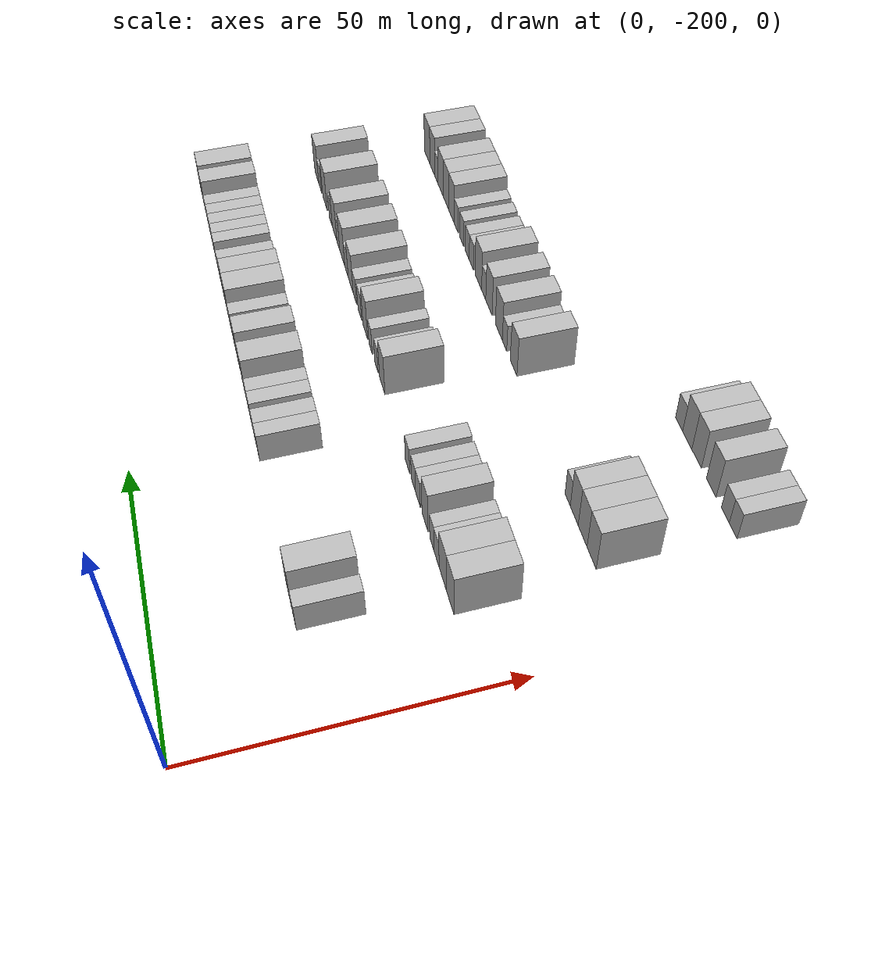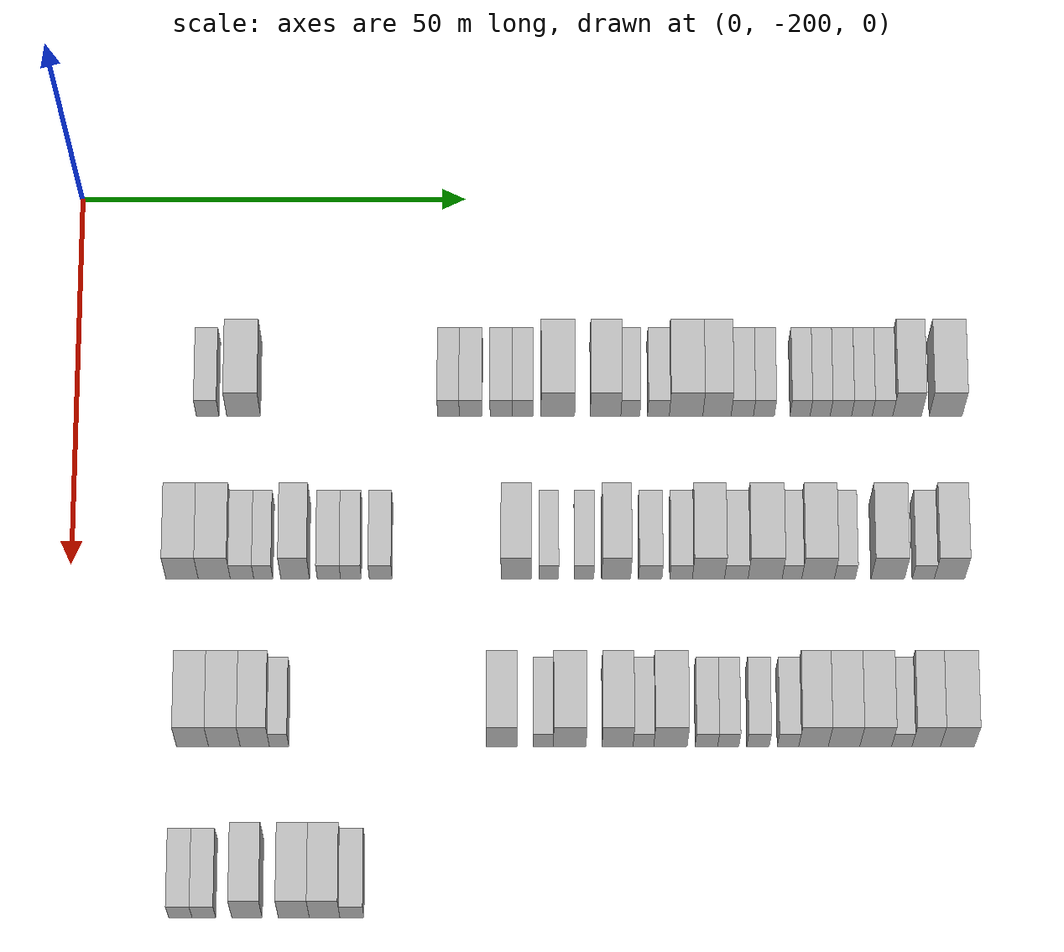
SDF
<sdf version="1.6">
 <world name="default">
  <model name="building_42">
   <static>1</static>
   <pose>25.0000 -183.0272 0 0.000000 0.000000 0.000000</pose>
   <link name="link">
    <pose>0 0 3.00 0 0 0</pose>
    <collision name="collision"><geometry><box><size>10.0000 2.9130 6.0000</size></box></geometry></collision>
    <visual name="visual">
     <cast_shadows>0</cast_shadows>
     <geometry><box><size>10.0000 2.9130 6.0000</size></box></geometry>
     <material>
      <script>
       <uri>model://HANNAS_wall/materials/scripts</uri>
       <uri>model://HANNAS_wall/materials/textures</uri>
       <name>vrc/HANNAS_wall</name>
      </script>
     </material>
    </visual>
   </link>
  </model>
  <model name="building_43">
   <static>1</static>
   <pose>25.0000 -178.3975 0 0.000000 0.000000 0.000000</pose>
   <link name="link">
    <pose>0 0 4.50 0 0 0</pose>
    <collision name="collision"><geometry><box><size>10.0000 4.3465 9.0000</size></box></geometry></collision>
    <visual name="visual">
     <cast_shadows>0</cast_shadows>
     <geometry><box><size>10.0000 4.3465 9.0000</size></box></geometry>
     <material>
      <script>
       <uri>model://HANNAS_wall/materials/scripts</uri>
       <uri>model://HANNAS_wall/materials/textures</uri>
       <name>vrc/HANNAS_wall</name>
      </script>
     </material>
    </visual>
   </link>
  </model>
  <model name="building_44">
   <static>1</static>
   <pose>25.0000 -152.0450 0 0.000000 0.000000 0.000000</pose>
   <link name="link">
    <pose>0 0 3.00 0 0 0</pose>
    <collision name="collision"><geometry><box><size>10.0000 2.7862 6.0000</size></box></geometry></collision>
    <visual name="visual">
     <cast_shadows>0</cast_shadows>
     <geometry><box><size>10.0000 2.7862 6.0000</size></box></geometry>
     <material>
      <script>
       <uri>model://HANNAS_wall/materials/scripts</uri>
       <uri>model://HANNAS_wall/materials/textures</uri>
       <name>vrc/HANNAS_wall</name>
      </script>
     </material>
    </visual>
   </link>
  </model>
  <model name="building_45">
   <static>1</static>
   <pose>25.0000 -149.1709 0 0.000000 0.000000 0.000000</pose>
   <link name="link">
    <pose>0 0 3.00 0 0 0</pose>
    <collision name="collision"><geometry><box><size>10.0000 2.9621 6.0000</size></box></geometry></collision>
    <visual name="visual">
     <cast_shadows>0</cast_shadows>
     <geometry><box><size>10.0000 2.9621 6.0000</size></box></geometry>
     <material>
      <script>
       <uri>model://HANNAS_wall/materials/scripts</uri>
       <uri>model://HANNAS_wall/materials/textures</uri>
       <name>vrc/HANNAS_wall</name>
      </script>
     </material>
    </visual>
   </link>
  </model>
  <model name="building_46">
   <static>1</static>
   <pose>25.0000 -145.2826 0 0.000000 0.000000 0.000000</pose>
   <link name="link">
    <pose>0 0 3.00 0 0 0</pose>
    <collision name="collision"><geometry><box><size>10.0000 2.8144 6.0000</size></box></geometry></collision>
    <visual name="visual">
     <cast_shadows>0</cast_shadows>
     <geometry><box><size>10.0000 2.8144 6.0000</size></box></geometry>
     <material>
      <script>
       <uri>model://HANNAS_wall/materials/scripts</uri>
       <uri>model://HANNAS_wall/materials/textures</uri>
       <name>vrc/HANNAS_wall</name>
      </script>
     </material>
    </visual>
   </link>
  </model>
  <model name="building_47">
   <static>1</static>
   <pose>25.0000 -142.5109 0 0.000000 0.000000 0.000000</pose>
   <link name="link">
    <pose>0 0 3.00 0 0 0</pose>
    <collision name="collision"><geometry><box><size>10.0000 2.7291 6.0000</size></box></geometry></collision>
    <visual name="visual">
     <cast_shadows>0</cast_shadows>
     <geometry><box><size>10.0000 2.7291 6.0000</size></box></geometry>
     <material>
      <script>
       <uri>model://HANNAS_wall/materials/scripts</uri>
       <uri>model://HANNAS_wall/materials/textures</uri>
       <name>vrc/HANNAS_wall</name>
      </script>
     </material>
    </visual>
   </link>
  </model>
  <model name="building_48">
   <static>1</static>
   <pose>25.0000 -137.9793 0 0.000000 0.000000 0.000000</pose>
   <link name="link">
    <pose>0 0 4.50 0 0 0</pose>
    <collision name="collision"><geometry><box><size>10.0000 4.3340 9.0000</size></box></geometry></collision>
    <visual name="visual">
     <cast_shadows>0</cast_shadows>
     <geometry><box><size>10.0000 4.3340 9.0000</size></box></geometry>
     <material>
      <script>
       <uri>model://HANNAS_wall/materials/scripts</uri>
       <uri>model://HANNAS_wall/materials/textures</uri>
       <name>vrc/HANNAS_wall</name>
      </script>
     </material>
    </visual>
   </link>
  </model>
  <model name="building_49">
   <static>1</static>
   <pose>25.0000 -131.8416 0 0.000000 0.000000 0.000000</pose>
   <link name="link">
    <pose>0 0 4.50 0 0 0</pose>
    <collision name="collision"><geometry><box><size>10.0000 3.9414 9.0000</size></box></geometry></collision>
    <visual name="visual">
     <cast_shadows>0</cast_shadows>
     <geometry><box><size>10.0000 3.9414 9.0000</size></box></geometry>
     <material>
      <script>
       <uri>model://HANNAS_wall/materials/scripts</uri>
       <uri>model://HANNAS_wall/materials/textures</uri>
       <name>vrc/HANNAS_wall</name>
      </script>
     </material>
    </visual>
   </link>
  </model>
  <model name="building_50">
   <static>1</static>
   <pose>25.0000 -128.6530 0 0.000000 0.000000 0.000000</pose>
   <link name="link">
    <pose>0 0 3.00 0 0 0</pose>
    <collision name="collision"><geometry><box><size>10.0000 2.4358 6.0000</size></box></geometry></collision>
    <visual name="visual">
     <cast_shadows>0</cast_shadows>
     <geometry><box><size>10.0000 2.4358 6.0000</size></box></geometry>
     <material>
      <script>
       <uri>model://HANNAS_wall/materials/scripts</uri>
       <uri>model://HANNAS_wall/materials/textures</uri>
       <name>vrc/HANNAS_wall</name>
      </script>
     </material>
    </visual>
   </link>
  </model>
  <model name="building_51">
   <static>1</static>
   <pose>25.0000 -125.0376 0 0.000000 0.000000 0.000000</pose>
   <link name="link">
    <pose>0 0 3.00 0 0 0</pose>
    <collision name="collision"><geometry><box><size>10.0000 2.7949 6.0000</size></box></geometry></collision>
    <visual name="visual">
     <cast_shadows>0</cast_shadows>
     <geometry><box><size>10.0000 2.7949 6.0000</size></box></geometry>
     <material>
      <script>
       <uri>model://HANNAS_wall/materials/scripts</uri>
       <uri>model://HANNAS_wall/materials/textures</uri>
       <name>vrc/HANNAS_wall</name>
      </script>
     </material>
    </visual>
   </link>
  </model>
  <model name="building_52">
   <static>1</static>
   <pose>25.0000 -121.4826 0 0.000000 0.000000 0.000000</pose>
   <link name="link">
    <pose>0 0 4.50 0 0 0</pose>
    <collision name="collision"><geometry><box><size>10.0000 4.3151 9.0000</size></box></geometry></collision>
    <visual name="visual">
     <cast_shadows>0</cast_shadows>
     <geometry><box><size>10.0000 4.3151 9.0000</size></box></geometry>
     <material>
      <script>
       <uri>model://HANNAS_wall/materials/scripts</uri>
       <uri>model://HANNAS_wall/materials/textures</uri>
       <name>vrc/HANNAS_wall</name>
      </script>
     </material>
    </visual>
   </link>
  </model>
  <model name="building_53">
   <static>1</static>
   <pose>25.0000 -117.5054 0 0.000000 0.000000 0.000000</pose>
   <link name="link">
    <pose>0 0 4.50 0 0 0</pose>
    <collision name="collision"><geometry><box><size>10.0000 3.6393 9.0000</size></box></geometry></collision>
    <visual name="visual">
     <cast_shadows>0</cast_shadows>
     <geometry><box><size>10.0000 3.6393 9.0000</size></box></geometry>
     <material>
      <script>
       <uri>model://HANNAS_wall/materials/scripts</uri>
       <uri>model://HANNAS_wall/materials/textures</uri>
       <name>vrc/HANNAS_wall</name>
      </script>
     </material>
    </visual>
   </link>
  </model>
  <model name="building_54">
   <static>1</static>
   <pose>25.0000 -114.2468 0 0.000000 0.000000 0.000000</pose>
   <link name="link">
    <pose>0 0 3.00 0 0 0</pose>
    <collision name="collision"><geometry><box><size>10.0000 2.8781 6.0000</size></box></geometry></collision>
    <visual name="visual">
     <cast_shadows>0</cast_shadows>
     <geometry><box><size>10.0000 2.8781 6.0000</size></box></geometry>
     <material>
      <script>
       <uri>model://HANNAS_wall/materials/scripts</uri>
       <uri>model://HANNAS_wall/materials/textures</uri>
       <name>vrc/HANNAS_wall</name>
      </script>
     </material>
    </visual>
   </link>
  </model>
  <model name="building_55">
   <static>1</static>
   <pose>25.0000 -111.4624 0 0.000000 0.000000 0.000000</pose>
   <link name="link">
    <pose>0 0 3.00 0 0 0</pose>
    <collision name="collision"><geometry><box><size>10.0000 2.6906 6.0000</size></box></geometry></collision>
    <visual name="visual">
     <cast_shadows>0</cast_shadows>
     <geometry><box><size>10.0000 2.6906 6.0000</size></box></geometry>
     <material>
      <script>
       <uri>model://HANNAS_wall/materials/scripts</uri>
       <uri>model://HANNAS_wall/materials/textures</uri>
       <name>vrc/HANNAS_wall</name>
      </script>
     </material>
    </visual>
   </link>
  </model>
  <model name="building_56">
   <static>1</static>
   <pose>25.0000 -106.8218 0 0.000000 0.000000 0.000000</pose>
   <link name="link">
    <pose>0 0 3.00 0 0 0</pose>
    <collision name="collision"><geometry><box><size>10.0000 2.5906 6.0000</size></box></geometry></collision>
    <visual name="visual">
     <cast_shadows>0</cast_shadows>
     <geometry><box><size>10.0000 2.5906 6.0000</size></box></geometry>
     <material>
      <script>
       <uri>model://HANNAS_wall/materials/scripts</uri>
       <uri>model://HANNAS_wall/materials/textures</uri>
       <name>vrc/HANNAS_wall</name>
      </script>
     </material>
    </visual>
   </link>
  </model>
  <model name="building_57">
   <static>1</static>
   <pose>25.0000 -104.2298 0 0.000000 0.000000 0.000000</pose>
   <link name="link">
    <pose>0 0 3.00 0 0 0</pose>
    <collision name="collision"><geometry><box><size>10.0000 2.5936 6.0000</size></box></geometry></collision>
    <visual name="visual">
     <cast_shadows>0</cast_shadows>
     <geometry><box><size>10.0000 2.5936 6.0000</size></box></geometry>
     <material>
      <script>
       <uri>model://HANNAS_wall/materials/scripts</uri>
       <uri>model://HANNAS_wall/materials/textures</uri>
       <name>vrc/HANNAS_wall</name>
      </script>
     </material>
    </visual>
   </link>
  </model>
  <model name="building_58">
   <static>1</static>
   <pose>25.0000 -101.5624 0 0.000000 0.000000 0.000000</pose>
   <link name="link">
    <pose>0 0 3.00 0 0 0</pose>
    <collision name="collision"><geometry><box><size>10.0000 2.7412 6.0000</size></box></geometry></collision>
    <visual name="visual">
     <cast_shadows>0</cast_shadows>
     <geometry><box><size>10.0000 2.7412 6.0000</size></box></geometry>
     <material>
      <script>
       <uri>model://HANNAS_wall/materials/scripts</uri>
       <uri>model://HANNAS_wall/materials/textures</uri>
       <name>vrc/HANNAS_wall</name>
      </script>
     </material>
    </visual>
   </link>
  </model>
  <model name="building_59">
   <static>1</static>
   <pose>25.0000 -98.8627 0 0.000000 0.000000 0.000000</pose>
   <link name="link">
    <pose>0 0 3.00 0 0 0</pose>
    <collision name="collision"><geometry><box><size>10.0000 2.6580 6.0000</size></box></geometry></collision>
    <visual name="visual">
     <cast_shadows>0</cast_shadows>
     <geometry><box><size>10.0000 2.6580 6.0000</size></box></geometry>
     <material>
      <script>
       <uri>model://HANNAS_wall/materials/scripts</uri>
       <uri>model://HANNAS_wall/materials/textures</uri>
       <name>vrc/HANNAS_wall</name>
      </script>
     </material>
    </visual>
   </link>
  </model>
  <model name="building_60">
   <static>1</static>
   <pose>25.0000 -96.2088 0 0.000000 0.000000 0.000000</pose>
   <link name="link">
    <pose>0 0 3.00 0 0 0</pose>
    <collision name="collision"><geometry><box><size>10.0000 2.6499 6.0000</size></box></geometry></collision>
    <visual name="visual">
     <cast_shadows>0</cast_shadows>
     <geometry><box><size>10.0000 2.6499 6.0000</size></box></geometry>
     <material>
      <script>
       <uri>model://HANNAS_wall/materials/scripts</uri>
       <uri>model://HANNAS_wall/materials/textures</uri>
       <name>vrc/HANNAS_wall</name>
      </script>
     </material>
    </visual>
   </link>
  </model>
  <model name="building_61">
   <static>1</static>
   <pose>25.0000 -93.0442 0 0.000000 0.000000 0.000000</pose>
   <link name="link">
    <pose>0 0 4.50 0 0 0</pose>
    <collision name="collision"><geometry><box><size>10.0000 3.6793 9.0000</size></box></geometry></collision>
    <visual name="visual">
     <cast_shadows>0</cast_shadows>
     <geometry><box><size>10.0000 3.6793 9.0000</size></box></geometry>
     <material>
      <script>
       <uri>model://HANNAS_wall/materials/scripts</uri>
       <uri>model://HANNAS_wall/materials/textures</uri>
       <name>vrc/HANNAS_wall</name>
      </script>
     </material>
    </visual>
   </link>
  </model>
  <model name="building_62">
   <static>1</static>
   <pose>25.0000 -88.0817 0 0.000000 0.000000 0.000000</pose>
   <link name="link">
    <pose>0 0 4.50 0 0 0</pose>
    <collision name="collision"><geometry><box><size>10.0000 4.2457 9.0000</size></box></geometry></collision>
    <visual name="visual">
     <cast_shadows>0</cast_shadows>
     <geometry><box><size>10.0000 4.2457 9.0000</size></box></geometry>
     <material>
      <script>
       <uri>model://HANNAS_wall/materials/scripts</uri>
       <uri>model://HANNAS_wall/materials/textures</uri>
       <name>vrc/HANNAS_wall</name>
      </script>
     </material>
    </visual>
   </link>
  </model>
  <model name="building_232">
   <static>1</static>
   <pose>47.0000 -185.7926 0 0.000000 0.000000 0.000000</pose>
   <link name="link">
    <pose>0 0 4.50 0 0 0</pose>
    <collision name="collision"><geometry><box><size>10.0000 4.1049 9.0000</size></box></geometry></collision>
    <visual name="visual">
     <cast_shadows>0</cast_shadows>
     <geometry><box><size>10.0000 4.1049 9.0000</size></box></geometry>
     <material>
      <script>
       <uri>model://HANNAS_wall/materials/scripts</uri>
       <uri>model://HANNAS_wall/materials/textures</uri>
       <name>vrc/HANNAS_wall</name>
      </script>
     </material>
    </visual>
   </link>
  </model>
  <model name="building_233">
   <static>1</static>
   <pose>47.0000 -181.7011 0 0.000000 0.000000 0.000000</pose>
   <link name="link">
    <pose>0 0 4.50 0 0 0</pose>
    <collision name="collision"><geometry><box><size>10.0000 4.0781 9.0000</size></box></geometry></collision>
    <visual name="visual">
     <cast_shadows>0</cast_shadows>
     <geometry><box><size>10.0000 4.0781 9.0000</size></box></geometry>
     <material>
      <script>
       <uri>model://HANNAS_wall/materials/scripts</uri>
       <uri>model://HANNAS_wall/materials/textures</uri>
       <name>vrc/HANNAS_wall</name>
      </script>
     </material>
    </visual>
   </link>
  </model>
  <model name="building_234">
   <static>1</static>
   <pose>47.0000 -178.1701 0 0.000000 0.000000 0.000000</pose>
   <link name="link">
    <pose>0 0 3.00 0 0 0</pose>
    <collision name="collision"><geometry><box><size>10.0000 2.9839 6.0000</size></box></geometry></collision>
    <visual name="visual">
     <cast_shadows>0</cast_shadows>
     <geometry><box><size>10.0000 2.9839 6.0000</size></box></geometry>
     <material>
      <script>
       <uri>model://HANNAS_wall/materials/scripts</uri>
       <uri>model://HANNAS_wall/materials/textures</uri>
       <name>vrc/HANNAS_wall</name>
      </script>
     </material>
    </visual>
   </link>
  </model>
  <model name="building_235">
   <static>1</static>
   <pose>47.0000 -175.4591 0 0.000000 0.000000 0.000000</pose>
   <link name="link">
    <pose>0 0 3.00 0 0 0</pose>
    <collision name="collision"><geometry><box><size>10.0000 2.4380 6.0000</size></box></geometry></collision>
    <visual name="visual">
     <cast_shadows>0</cast_shadows>
     <geometry><box><size>10.0000 2.4380 6.0000</size></box></geometry>
     <material>
      <script>
       <uri>model://HANNAS_wall/materials/scripts</uri>
       <uri>model://HANNAS_wall/materials/textures</uri>
       <name>vrc/HANNAS_wall</name>
      </script>
     </material>
    </visual>
   </link>
  </model>
  <model name="building_236">
   <static>1</static>
   <pose>47.0000 -171.4215 0 0.000000 0.000000 0.000000</pose>
   <link name="link">
    <pose>0 0 4.50 0 0 0</pose>
    <collision name="collision"><geometry><box><size>10.0000 3.6372 9.0000</size></box></geometry></collision>
    <visual name="visual">
     <cast_shadows>0</cast_shadows>
     <geometry><box><size>10.0000 3.6372 9.0000</size></box></geometry>
     <material>
      <script>
       <uri>model://HANNAS_wall/materials/scripts</uri>
       <uri>model://HANNAS_wall/materials/textures</uri>
       <name>vrc/HANNAS_wall</name>
      </script>
     </material>
    </visual>
   </link>
  </model>
  <model name="building_237">
   <static>1</static>
   <pose>47.0000 -167.1223 0 0.000000 0.000000 0.000000</pose>
   <link name="link">
    <pose>0 0 3.00 0 0 0</pose>
    <collision name="collision"><geometry><box><size>10.0000 2.9612 6.0000</size></box></geometry></collision>
    <visual name="visual">
     <cast_shadows>0</cast_shadows>
     <geometry><box><size>10.0000 2.9612 6.0000</size></box></geometry>
     <material>
      <script>
       <uri>model://HANNAS_wall/materials/scripts</uri>
       <uri>model://HANNAS_wall/materials/textures</uri>
       <name>vrc/HANNAS_wall</name>
      </script>
     </material>
    </visual>
   </link>
  </model>
  <model name="building_238">
   <static>1</static>
   <pose>47.0000 -164.3215 0 0.000000 0.000000 0.000000</pose>
   <link name="link">
    <pose>0 0 3.00 0 0 0</pose>
    <collision name="collision"><geometry><box><size>10.0000 2.6404 6.0000</size></box></geometry></collision>
    <visual name="visual">
     <cast_shadows>0</cast_shadows>
     <geometry><box><size>10.0000 2.6404 6.0000</size></box></geometry>
     <material>
      <script>
       <uri>model://HANNAS_wall/materials/scripts</uri>
       <uri>model://HANNAS_wall/materials/textures</uri>
       <name>vrc/HANNAS_wall</name>
      </script>
     </material>
    </visual>
   </link>
  </model>
  <model name="building_239">
   <static>1</static>
   <pose>47.0000 -160.5517 0 0.000000 0.000000 0.000000</pose>
   <link name="link">
    <pose>0 0 3.00 0 0 0</pose>
    <collision name="collision"><geometry><box><size>10.0000 2.8992 6.0000</size></box></geometry></collision>
    <visual name="visual">
     <cast_shadows>0</cast_shadows>
     <geometry><box><size>10.0000 2.8992 6.0000</size></box></geometry>
     <material>
      <script>
       <uri>model://HANNAS_wall/materials/scripts</uri>
       <uri>model://HANNAS_wall/materials/textures</uri>
       <name>vrc/HANNAS_wall</name>
      </script>
     </material>
    </visual>
   </link>
  </model>
  <model name="building_240">
   <static>1</static>
   <pose>47.0000 -143.3220 0 0.000000 0.000000 0.000000</pose>
   <link name="link">
    <pose>0 0 4.50 0 0 0</pose>
    <collision name="collision"><geometry><box><size>10.0000 3.8534 9.0000</size></box></geometry></collision>
    <visual name="visual">
     <cast_shadows>0</cast_shadows>
     <geometry><box><size>10.0000 3.8534 9.0000</size></box></geometry>
     <material>
      <script>
       <uri>model://HANNAS_wall/materials/scripts</uri>
       <uri>model://HANNAS_wall/materials/textures</uri>
       <name>vrc/HANNAS_wall</name>
      </script>
     </material>
    </visual>
   </link>
  </model>
  <model name="building_241">
   <static>1</static>
   <pose>47.0000 -139.1752 0 0.000000 0.000000 0.000000</pose>
   <link name="link">
    <pose>0 0 3.00 0 0 0</pose>
    <collision name="collision"><geometry><box><size>10.0000 2.4403 6.0000</size></box></geometry></collision>
    <visual name="visual">
     <cast_shadows>0</cast_shadows>
     <geometry><box><size>10.0000 2.4403 6.0000</size></box></geometry>
     <material>
      <script>
       <uri>model://HANNAS_wall/materials/scripts</uri>
       <uri>model://HANNAS_wall/materials/textures</uri>
       <name>vrc/HANNAS_wall</name>
      </script>
     </material>
    </visual>
   </link>
  </model>
  <model name="building_242">
   <static>1</static>
   <pose>47.0000 -134.7123 0 0.000000 0.000000 0.000000</pose>
   <link name="link">
    <pose>0 0 3.00 0 0 0</pose>
    <collision name="collision"><geometry><box><size>10.0000 2.4854 6.0000</size></box></geometry></collision>
    <visual name="visual">
     <cast_shadows>0</cast_shadows>
     <geometry><box><size>10.0000 2.4854 6.0000</size></box></geometry>
     <material>
      <script>
       <uri>model://HANNAS_wall/materials/scripts</uri>
       <uri>model://HANNAS_wall/materials/textures</uri>
       <name>vrc/HANNAS_wall</name>
      </script>
     </material>
    </visual>
   </link>
  </model>
  <model name="building_243">
   <static>1</static>
   <pose>47.0000 -130.6292 0 0.000000 0.000000 0.000000</pose>
   <link name="link">
    <pose>0 0 4.50 0 0 0</pose>
    <collision name="collision"><geometry><box><size>10.0000 3.6810 9.0000</size></box></geometry></collision>
    <visual name="visual">
     <cast_shadows>0</cast_shadows>
     <geometry><box><size>10.0000 3.6810 9.0000</size></box></geometry>
     <material>
      <script>
       <uri>model://HANNAS_wall/materials/scripts</uri>
       <uri>model://HANNAS_wall/materials/textures</uri>
       <name>vrc/HANNAS_wall</name>
      </script>
     </material>
    </visual>
   </link>
  </model>
  <model name="building_244">
   <static>1</static>
   <pose>47.0000 -126.3032 0 0.000000 0.000000 0.000000</pose>
   <link name="link">
    <pose>0 0 3.00 0 0 0</pose>
    <collision name="collision"><geometry><box><size>10.0000 2.9710 6.0000</size></box></geometry></collision>
    <visual name="visual">
     <cast_shadows>0</cast_shadows>
     <geometry><box><size>10.0000 2.9710 6.0000</size></box></geometry>
     <material>
      <script>
       <uri>model://HANNAS_wall/materials/scripts</uri>
       <uri>model://HANNAS_wall/materials/textures</uri>
       <name>vrc/HANNAS_wall</name>
      </script>
     </material>
    </visual>
   </link>
  </model>
  <model name="building_245">
   <static>1</static>
   <pose>47.0000 -122.3835 0 0.000000 0.000000 0.000000</pose>
   <link name="link">
    <pose>0 0 3.00 0 0 0</pose>
    <collision name="collision"><geometry><box><size>10.0000 2.8685 6.0000</size></box></geometry></collision>
    <visual name="visual">
     <cast_shadows>0</cast_shadows>
     <geometry><box><size>10.0000 2.8685 6.0000</size></box></geometry>
     <material>
      <script>
       <uri>model://HANNAS_wall/materials/scripts</uri>
       <uri>model://HANNAS_wall/materials/textures</uri>
       <name>vrc/HANNAS_wall</name>
      </script>
     </material>
    </visual>
   </link>
  </model>
  <model name="building_246">
   <static>1</static>
   <pose>47.0000 -118.8982 0 0.000000 0.000000 0.000000</pose>
   <link name="link">
    <pose>0 0 4.50 0 0 0</pose>
    <collision name="collision"><geometry><box><size>10.0000 4.1020 9.0000</size></box></geometry></collision>
    <visual name="visual">
     <cast_shadows>0</cast_shadows>
     <geometry><box><size>10.0000 4.1020 9.0000</size></box></geometry>
     <material>
      <script>
       <uri>model://HANNAS_wall/materials/scripts</uri>
       <uri>model://HANNAS_wall/materials/textures</uri>
       <name>vrc/HANNAS_wall</name>
      </script>
     </material>
    </visual>
   </link>
  </model>
  <model name="building_247">
   <static>1</static>
   <pose>47.0000 -115.3541 0 0.000000 0.000000 0.000000</pose>
   <link name="link">
    <pose>0 0 3.00 0 0 0</pose>
    <collision name="collision"><geometry><box><size>10.0000 2.9863 6.0000</size></box></geometry></collision>
    <visual name="visual">
     <cast_shadows>0</cast_shadows>
     <geometry><box><size>10.0000 2.9863 6.0000</size></box></geometry>
     <material>
      <script>
       <uri>model://HANNAS_wall/materials/scripts</uri>
       <uri>model://HANNAS_wall/materials/textures</uri>
       <name>vrc/HANNAS_wall</name>
      </script>
     </material>
    </visual>
   </link>
  </model>
  <model name="building_248">
   <static>1</static>
   <pose>47.0000 -111.6989 0 0.000000 0.000000 0.000000</pose>
   <link name="link">
    <pose>0 0 4.50 0 0 0</pose>
    <collision name="collision"><geometry><box><size>10.0000 4.3241 9.0000</size></box></geometry></collision>
    <visual name="visual">
     <cast_shadows>0</cast_shadows>
     <geometry><box><size>10.0000 4.3241 9.0000</size></box></geometry>
     <material>
      <script>
       <uri>model://HANNAS_wall/materials/scripts</uri>
       <uri>model://HANNAS_wall/materials/textures</uri>
       <name>vrc/HANNAS_wall</name>
      </script>
     </material>
    </visual>
   </link>
  </model>
  <model name="building_249">
   <static>1</static>
   <pose>47.0000 -108.2881 0 0.000000 0.000000 0.000000</pose>
   <link name="link">
    <pose>0 0 3.00 0 0 0</pose>
    <collision name="collision"><geometry><box><size>10.0000 2.4975 6.0000</size></box></geometry></collision>
    <visual name="visual">
     <cast_shadows>0</cast_shadows>
     <geometry><box><size>10.0000 2.4975 6.0000</size></box></geometry>
     <material>
      <script>
       <uri>model://HANNAS_wall/materials/scripts</uri>
       <uri>model://HANNAS_wall/materials/textures</uri>
       <name>vrc/HANNAS_wall</name>
      </script>
     </material>
    </visual>
   </link>
  </model>
  <model name="building_250">
   <static>1</static>
   <pose>47.0000 -104.9601 0 0.000000 0.000000 0.000000</pose>
   <link name="link">
    <pose>0 0 4.50 0 0 0</pose>
    <collision name="collision"><geometry><box><size>10.0000 4.1584 9.0000</size></box></geometry></collision>
    <visual name="visual">
     <cast_shadows>0</cast_shadows>
     <geometry><box><size>10.0000 4.1584 9.0000</size></box></geometry>
     <material>
      <script>
       <uri>model://HANNAS_wall/materials/scripts</uri>
       <uri>model://HANNAS_wall/materials/textures</uri>
       <name>vrc/HANNAS_wall</name>
      </script>
     </material>
    </visual>
   </link>
  </model>
  <model name="building_251">
   <static>1</static>
   <pose>47.0000 -101.5570 0 0.000000 0.000000 0.000000</pose>
   <link name="link">
    <pose>0 0 3.00 0 0 0</pose>
    <collision name="collision"><geometry><box><size>10.0000 2.6480 6.0000</size></box></geometry></collision>
    <visual name="visual">
     <cast_shadows>0</cast_shadows>
     <geometry><box><size>10.0000 2.6480 6.0000</size></box></geometry>
     <material>
      <script>
       <uri>model://HANNAS_wall/materials/scripts</uri>
       <uri>model://HANNAS_wall/materials/textures</uri>
       <name>vrc/HANNAS_wall</name>
      </script>
     </material>
    </visual>
   </link>
  </model>
  <model name="building_252">
   <static>1</static>
   <pose>47.0000 -96.1088 0 0.000000 0.000000 0.000000</pose>
   <link name="link">
    <pose>0 0 4.50 0 0 0</pose>
    <collision name="collision"><geometry><box><size>10.0000 4.2484 9.0000</size></box></geometry></collision>
    <visual name="visual">
     <cast_shadows>0</cast_shadows>
     <geometry><box><size>10.0000 4.2484 9.0000</size></box></geometry>
     <material>
      <script>
       <uri>model://HANNAS_wall/materials/scripts</uri>
       <uri>model://HANNAS_wall/materials/textures</uri>
       <name>vrc/HANNAS_wall</name>
      </script>
     </material>
    </visual>
   </link>
  </model>
  <model name="building_253">
   <static>1</static>
   <pose>47.0000 -91.5871 0 0.000000 0.000000 0.000000</pose>
   <link name="link">
    <pose>0 0 3.00 0 0 0</pose>
    <collision name="collision"><geometry><box><size>10.0000 2.7950 6.0000</size></box></geometry></collision>
    <visual name="visual">
     <cast_shadows>0</cast_shadows>
     <geometry><box><size>10.0000 2.7950 6.0000</size></box></geometry>
     <material>
      <script>
       <uri>model://HANNAS_wall/materials/scripts</uri>
       <uri>model://HANNAS_wall/materials/textures</uri>
       <name>vrc/HANNAS_wall</name>
      </script>
     </material>
    </visual>
   </link>
  </model>
  <model name="building_254">
   <static>1</static>
   <pose>47.0000 -88.2599 0 0.000000 0.000000 0.000000</pose>
   <link name="link">
    <pose>0 0 4.50 0 0 0</pose>
    <collision name="collision"><geometry><box><size>10.0000 3.8595 9.0000</size></box></geometry></collision>
    <visual name="visual">
     <cast_shadows>0</cast_shadows>
     <geometry><box><size>10.0000 3.8595 9.0000</size></box></geometry>
     <material>
      <script>
       <uri>model://HANNAS_wall/materials/scripts</uri>
       <uri>model://HANNAS_wall/materials/textures</uri>
       <name>vrc/HANNAS_wall</name>
      </script>
     </material>
    </visual>
   </link>
  </model>
  <model name="building_426">
   <static>1</static>
   <pose>69.0000 -183.9792 0 0.000000 0.000000 0.000000</pose>
   <link name="link">
    <pose>0 0 4.50 0 0 0</pose>
    <collision name="collision"><geometry><box><size>10.0000 4.0160 9.0000</size></box></geometry></collision>
    <visual name="visual">
     <cast_shadows>0</cast_shadows>
     <geometry><box><size>10.0000 4.0160 9.0000</size></box></geometry>
     <material>
      <script>
       <uri>model://HANNAS_wall/materials/scripts</uri>
       <uri>model://HANNAS_wall/materials/textures</uri>
       <name>vrc/HANNAS_wall</name>
      </script>
     </material>
    </visual>
   </link>
  </model>
  <model name="building_427">
   <static>1</static>
   <pose>69.0000 -179.9753 0 0.000000 0.000000 0.000000</pose>
   <link name="link">
    <pose>0 0 4.50 0 0 0</pose>
    <collision name="collision"><geometry><box><size>10.0000 3.9917 9.0000</size></box></geometry></collision>
    <visual name="visual">
     <cast_shadows>0</cast_shadows>
     <geometry><box><size>10.0000 3.9917 9.0000</size></box></geometry>
     <material>
      <script>
       <uri>model://HANNAS_wall/materials/scripts</uri>
       <uri>model://HANNAS_wall/materials/textures</uri>
       <name>vrc/HANNAS_wall</name>
      </script>
     </material>
    </visual>
   </link>
  </model>
  <model name="building_428">
   <static>1</static>
   <pose>69.0000 -176.1554 0 0.000000 0.000000 0.000000</pose>
   <link name="link">
    <pose>0 0 4.50 0 0 0</pose>
    <collision name="collision"><geometry><box><size>10.0000 3.6482 9.0000</size></box></geometry></collision>
    <visual name="visual">
     <cast_shadows>0</cast_shadows>
     <geometry><box><size>10.0000 3.6482 9.0000</size></box></geometry>
     <material>
      <script>
       <uri>model://HANNAS_wall/materials/scripts</uri>
       <uri>model://HANNAS_wall/materials/textures</uri>
       <name>vrc/HANNAS_wall</name>
      </script>
     </material>
    </visual>
   </link>
  </model>
  <model name="building_429">
   <static>1</static>
   <pose>69.0000 -173.1004 0 0.000000 0.000000 0.000000</pose>
   <link name="link">
    <pose>0 0 3.00 0 0 0</pose>
    <collision name="collision"><geometry><box><size>10.0000 2.4617 6.0000</size></box></geometry></collision>
    <visual name="visual">
     <cast_shadows>0</cast_shadows>
     <geometry><box><size>10.0000 2.4617 6.0000</size></box></geometry>
     <material>
      <script>
       <uri>model://HANNAS_wall/materials/scripts</uri>
       <uri>model://HANNAS_wall/materials/textures</uri>
       <name>vrc/HANNAS_wall</name>
      </script>
     </material>
    </visual>
   </link>
  </model>
  <model name="building_430">
   <static>1</static>
   <pose>69.0000 -145.1400 0 0.000000 0.000000 0.000000</pose>
   <link name="link">
    <pose>0 0 4.50 0 0 0</pose>
    <collision name="collision"><geometry><box><size>10.0000 3.8197 9.0000</size></box></geometry></collision>
    <visual name="visual">
     <cast_shadows>0</cast_shadows>
     <geometry><box><size>10.0000 3.8197 9.0000</size></box></geometry>
     <material>
      <script>
       <uri>model://HANNAS_wall/materials/scripts</uri>
       <uri>model://HANNAS_wall/materials/textures</uri>
       <name>vrc/HANNAS_wall</name>
      </script>
     </material>
    </visual>
   </link>
  </model>
  <model name="building_431">
   <static>1</static>
   <pose>69.0000 -139.9395 0 0.000000 0.000000 0.000000</pose>
   <link name="link">
    <pose>0 0 3.00 0 0 0</pose>
    <collision name="collision"><geometry><box><size>10.0000 2.5813 6.0000</size></box></geometry></collision>
    <visual name="visual">
     <cast_shadows>0</cast_shadows>
     <geometry><box><size>10.0000 2.5813 6.0000</size></box></geometry>
     <material>
      <script>
       <uri>model://HANNAS_wall/materials/scripts</uri>
       <uri>model://HANNAS_wall/materials/textures</uri>
       <name>vrc/HANNAS_wall</name>
      </script>
     </material>
    </visual>
   </link>
  </model>
  <model name="building_432">
   <static>1</static>
   <pose>69.0000 -136.5981 0 0.000000 0.000000 0.000000</pose>
   <link name="link">
    <pose>0 0 4.50 0 0 0</pose>
    <collision name="collision"><geometry><box><size>10.0000 4.1015 9.0000</size></box></geometry></collision>
    <visual name="visual">
     <cast_shadows>0</cast_shadows>
     <geometry><box><size>10.0000 4.1015 9.0000</size></box></geometry>
     <material>
      <script>
       <uri>model://HANNAS_wall/materials/scripts</uri>
       <uri>model://HANNAS_wall/materials/textures</uri>
       <name>vrc/HANNAS_wall</name>
      </script>
     </material>
    </visual>
   </link>
  </model>
  <model name="building_433">
   <static>1</static>
   <pose>69.0000 -130.5956 0 0.000000 0.000000 0.000000</pose>
   <link name="link">
    <pose>0 0 4.50 0 0 0</pose>
    <collision name="collision"><geometry><box><size>10.0000 3.9036 9.0000</size></box></geometry></collision>
    <visual name="visual">
     <cast_shadows>0</cast_shadows>
     <geometry><box><size>10.0000 3.9036 9.0000</size></box></geometry>
     <material>
      <script>
       <uri>model://HANNAS_wall/materials/scripts</uri>
       <uri>model://HANNAS_wall/materials/textures</uri>
       <name>vrc/HANNAS_wall</name>
      </script>
     </material>
    </visual>
   </link>
  </model>
  <model name="building_434">
   <static>1</static>
   <pose>69.0000 -127.3482 0 0.000000 0.000000 0.000000</pose>
   <link name="link">
    <pose>0 0 3.00 0 0 0</pose>
    <collision name="collision"><geometry><box><size>10.0000 2.5911 6.0000</size></box></geometry></collision>
    <visual name="visual">
     <cast_shadows>0</cast_shadows>
     <geometry><box><size>10.0000 2.5911 6.0000</size></box></geometry>
     <material>
      <script>
       <uri>model://HANNAS_wall/materials/scripts</uri>
       <uri>model://HANNAS_wall/materials/textures</uri>
       <name>vrc/HANNAS_wall</name>
      </script>
     </material>
    </visual>
   </link>
  </model>
  <model name="building_435">
   <static>1</static>
   <pose>69.0000 -123.9557 0 0.000000 0.000000 0.000000</pose>
   <link name="link">
    <pose>0 0 4.50 0 0 0</pose>
    <collision name="collision"><geometry><box><size>10.0000 4.1939 9.0000</size></box></geometry></collision>
    <visual name="visual">
     <cast_shadows>0</cast_shadows>
     <geometry><box><size>10.0000 4.1939 9.0000</size></box></geometry>
     <material>
      <script>
       <uri>model://HANNAS_wall/materials/scripts</uri>
       <uri>model://HANNAS_wall/materials/textures</uri>
       <name>vrc/HANNAS_wall</name>
      </script>
     </material>
    </visual>
   </link>
  </model>
  <model name="building_436">
   <static>1</static>
   <pose>69.0000 -119.4419 0 0.000000 0.000000 0.000000</pose>
   <link name="link">
    <pose>0 0 3.00 0 0 0</pose>
    <collision name="collision"><geometry><box><size>10.0000 2.8336 6.0000</size></box></geometry></collision>
    <visual name="visual">
     <cast_shadows>0</cast_shadows>
     <geometry><box><size>10.0000 2.8336 6.0000</size></box></geometry>
     <material>
      <script>
       <uri>model://HANNAS_wall/materials/scripts</uri>
       <uri>model://HANNAS_wall/materials/textures</uri>
       <name>vrc/HANNAS_wall</name>
      </script>
     </material>
    </visual>
   </link>
  </model>
  <model name="building_437">
   <static>1</static>
   <pose>69.0000 -116.6955 0 0.000000 0.000000 0.000000</pose>
   <link name="link">
    <pose>0 0 3.00 0 0 0</pose>
    <collision name="collision"><geometry><box><size>10.0000 2.6590 6.0000</size></box></geometry></collision>
    <visual name="visual">
     <cast_shadows>0</cast_shadows>
     <geometry><box><size>10.0000 2.6590 6.0000</size></box></geometry>
     <material>
      <script>
       <uri>model://HANNAS_wall/materials/scripts</uri>
       <uri>model://HANNAS_wall/materials/textures</uri>
       <name>vrc/HANNAS_wall</name>
      </script>
     </material>
    </visual>
   </link>
  </model>
  <model name="building_438">
   <static>1</static>
   <pose>69.0000 -112.9554 0 0.000000 0.000000 0.000000</pose>
   <link name="link">
    <pose>0 0 3.00 0 0 0</pose>
    <collision name="collision"><geometry><box><size>10.0000 2.8214 6.0000</size></box></geometry></collision>
    <visual name="visual">
     <cast_shadows>0</cast_shadows>
     <geometry><box><size>10.0000 2.8214 6.0000</size></box></geometry>
     <material>
      <script>
       <uri>model://HANNAS_wall/materials/scripts</uri>
       <uri>model://HANNAS_wall/materials/textures</uri>
       <name>vrc/HANNAS_wall</name>
      </script>
     </material>
    </visual>
   </link>
  </model>
  <model name="building_439">
   <static>1</static>
   <pose>69.0000 -109.1896 0 0.000000 0.000000 0.000000</pose>
   <link name="link">
    <pose>0 0 3.00 0 0 0</pose>
    <collision name="collision"><geometry><box><size>10.0000 2.7101 6.0000</size></box></geometry></collision>
    <visual name="visual">
     <cast_shadows>0</cast_shadows>
     <geometry><box><size>10.0000 2.7101 6.0000</size></box></geometry>
     <material>
      <script>
       <uri>model://HANNAS_wall/materials/scripts</uri>
       <uri>model://HANNAS_wall/materials/textures</uri>
       <name>vrc/HANNAS_wall</name>
      </script>
     </material>
    </visual>
   </link>
  </model>
  <model name="building_440">
   <static>1</static>
   <pose>69.0000 -105.9758 0 0.000000 0.000000 0.000000</pose>
   <link name="link">
    <pose>0 0 4.50 0 0 0</pose>
    <collision name="collision"><geometry><box><size>10.0000 3.7175 9.0000</size></box></geometry></collision>
    <visual name="visual">
     <cast_shadows>0</cast_shadows>
     <geometry><box><size>10.0000 3.7175 9.0000</size></box></geometry>
     <material>
      <script>
       <uri>model://HANNAS_wall/materials/scripts</uri>
       <uri>model://HANNAS_wall/materials/textures</uri>
       <name>vrc/HANNAS_wall</name>
      </script>
     </material>
    </visual>
   </link>
  </model>
  <model name="building_441">
   <static>1</static>
   <pose>69.0000 -102.1430 0 0.000000 0.000000 0.000000</pose>
   <link name="link">
    <pose>0 0 4.50 0 0 0</pose>
    <collision name="collision"><geometry><box><size>10.0000 3.9482 9.0000</size></box></geometry></collision>
    <visual name="visual">
     <cast_shadows>0</cast_shadows>
     <geometry><box><size>10.0000 3.9482 9.0000</size></box></geometry>
     <material>
      <script>
       <uri>model://HANNAS_wall/materials/scripts</uri>
       <uri>model://HANNAS_wall/materials/textures</uri>
       <name>vrc/HANNAS_wall</name>
      </script>
     </material>
    </visual>
   </link>
  </model>
  <model name="building_442">
   <static>1</static>
   <pose>69.0000 -98.1682 0 0.000000 0.000000 0.000000</pose>
   <link name="link">
    <pose>0 0 4.50 0 0 0</pose>
    <collision name="collision"><geometry><box><size>10.0000 4.0014 9.0000</size></box></geometry></collision>
    <visual name="visual">
     <cast_shadows>0</cast_shadows>
     <geometry><box><size>10.0000 4.0014 9.0000</size></box></geometry>
     <material>
      <script>
       <uri>model://HANNAS_wall/materials/scripts</uri>
       <uri>model://HANNAS_wall/materials/textures</uri>
       <name>vrc/HANNAS_wall</name>
      </script>
     </material>
    </visual>
   </link>
  </model>
  <model name="building_443">
   <static>1</static>
   <pose>69.0000 -94.8983 0 0.000000 0.000000 0.000000</pose>
   <link name="link">
    <pose>0 0 3.00 0 0 0</pose>
    <collision name="collision"><geometry><box><size>10.0000 2.5384 6.0000</size></box></geometry></collision>
    <visual name="visual">
     <cast_shadows>0</cast_shadows>
     <geometry><box><size>10.0000 2.5384 6.0000</size></box></geometry>
     <material>
      <script>
       <uri>model://HANNAS_wall/materials/scripts</uri>
       <uri>model://HANNAS_wall/materials/textures</uri>
       <name>vrc/HANNAS_wall</name>
      </script>
     </material>
    </visual>
   </link>
  </model>
  <model name="building_444">
   <static>1</static>
   <pose>69.0000 -91.8259 0 0.000000 0.000000 0.000000</pose>
   <link name="link">
    <pose>0 0 4.50 0 0 0</pose>
    <collision name="collision"><geometry><box><size>10.0000 3.6064 9.0000</size></box></geometry></collision>
    <visual name="visual">
     <cast_shadows>0</cast_shadows>
     <geometry><box><size>10.0000 3.6064 9.0000</size></box></geometry>
     <material>
      <script>
       <uri>model://HANNAS_wall/materials/scripts</uri>
       <uri>model://HANNAS_wall/materials/textures</uri>
       <name>vrc/HANNAS_wall</name>
      </script>
     </material>
    </visual>
   </link>
  </model>
  <model name="building_445">
   <static>1</static>
   <pose>69.0000 -87.9023 0 0.000000 0.000000 0.000000</pose>
   <link name="link">
    <pose>0 0 4.50 0 0 0</pose>
    <collision name="collision"><geometry><box><size>10.0000 4.2408 9.0000</size></box></geometry></collision>
    <visual name="visual">
     <cast_shadows>0</cast_shadows>
     <geometry><box><size>10.0000 4.2408 9.0000</size></box></geometry>
     <material>
      <script>
       <uri>model://HANNAS_wall/materials/scripts</uri>
       <uri>model://HANNAS_wall/materials/textures</uri>
       <name>vrc/HANNAS_wall</name>
      </script>
     </material>
    </visual>
   </link>
  </model>
  <model name="building_609">
   <static>1</static>
   <pose>91.0000 -184.9753 0 0.000000 0.000000 0.000000</pose>
   <link name="link">
    <pose>0 0 3.00 0 0 0</pose>
    <collision name="collision"><geometry><box><size>10.0000 2.9082 6.0000</size></box></geometry></collision>
    <visual name="visual">
     <cast_shadows>0</cast_shadows>
     <geometry><box><size>10.0000 2.9082 6.0000</size></box></geometry>
     <material>
      <script>
       <uri>model://HANNAS_wall/materials/scripts</uri>
       <uri>model://HANNAS_wall/materials/textures</uri>
       <name>vrc/HANNAS_wall</name>
      </script>
     </material>
    </visual>
   </link>
  </model>
  <model name="building_610">
   <static>1</static>
   <pose>91.0000 -182.0538 0 0.000000 0.000000 0.000000</pose>
   <link name="link">
    <pose>0 0 3.00 0 0 0</pose>
    <collision name="collision"><geometry><box><size>10.0000 2.9348 6.0000</size></box></geometry></collision>
    <visual name="visual">
     <cast_shadows>0</cast_shadows>
     <geometry><box><size>10.0000 2.9348 6.0000</size></box></geometry>
     <material>
      <script>
       <uri>model://HANNAS_wall/materials/scripts</uri>
       <uri>model://HANNAS_wall/materials/textures</uri>
       <name>vrc/HANNAS_wall</name>
      </script>
     </material>
    </visual>
   </link>
  </model>
  <model name="building_611">
   <static>1</static>
   <pose>91.0000 -176.7012 0 0.000000 0.000000 0.000000</pose>
   <link name="link">
    <pose>0 0 4.50 0 0 0</pose>
    <collision name="collision"><geometry><box><size>10.0000 3.7704 9.0000</size></box></geometry></collision>
    <visual name="visual">
     <cast_shadows>0</cast_shadows>
     <geometry><box><size>10.0000 3.7704 9.0000</size></box></geometry>
     <material>
      <script>
       <uri>model://HANNAS_wall/materials/scripts</uri>
       <uri>model://HANNAS_wall/materials/textures</uri>
       <name>vrc/HANNAS_wall</name>
      </script>
     </material>
    </visual>
   </link>
  </model>
  <model name="building_612">
   <static>1</static>
   <pose>91.0000 -170.9027 0 0.000000 0.000000 0.000000</pose>
   <link name="link">
    <pose>0 0 4.50 0 0 0</pose>
    <collision name="collision"><geometry><box><size>10.0000 3.8265 9.0000</size></box></geometry></collision>
    <visual name="visual">
     <cast_shadows>0</cast_shadows>
     <geometry><box><size>10.0000 3.8265 9.0000</size></box></geometry>
     <material>
      <script>
       <uri>model://HANNAS_wall/materials/scripts</uri>
       <uri>model://HANNAS_wall/materials/textures</uri>
       <name>vrc/HANNAS_wall</name>
      </script>
     </material>
    </visual>
   </link>
  </model>
  <model name="building_613">
   <static>1</static>
   <pose>91.0000 -167.0881 0 0.000000 0.000000 0.000000</pose>
   <link name="link">
    <pose>0 0 4.50 0 0 0</pose>
    <collision name="collision"><geometry><box><size>10.0000 3.8028 9.0000</size></box></geometry></collision>
    <visual name="visual">
     <cast_shadows>0</cast_shadows>
     <geometry><box><size>10.0000 3.8028 9.0000</size></box></geometry>
     <material>
      <script>
       <uri>model://HANNAS_wall/materials/scripts</uri>
       <uri>model://HANNAS_wall/materials/textures</uri>
       <name>vrc/HANNAS_wall</name>
      </script>
     </material>
    </visual>
   </link>
  </model>
  <model name="building_614">
   <static>1</static>
   <pose>91.0000 -163.6973 0 0.000000 0.000000 0.000000</pose>
   <link name="link">
    <pose>0 0 3.00 0 0 0</pose>
    <collision name="collision"><geometry><box><size>10.0000 2.9787 6.0000</size></box></geometry></collision>
    <visual name="visual">
     <cast_shadows>0</cast_shadows>
     <geometry><box><size>10.0000 2.9787 6.0000</size></box></geometry>
     <material>
      <script>
       <uri>model://HANNAS_wall/materials/scripts</uri>
       <uri>model://HANNAS_wall/materials/textures</uri>
       <name>vrc/HANNAS_wall</name>
      </script>
     </material>
    </visual>
   </link>
  </model>
 </world>
</sdf>
